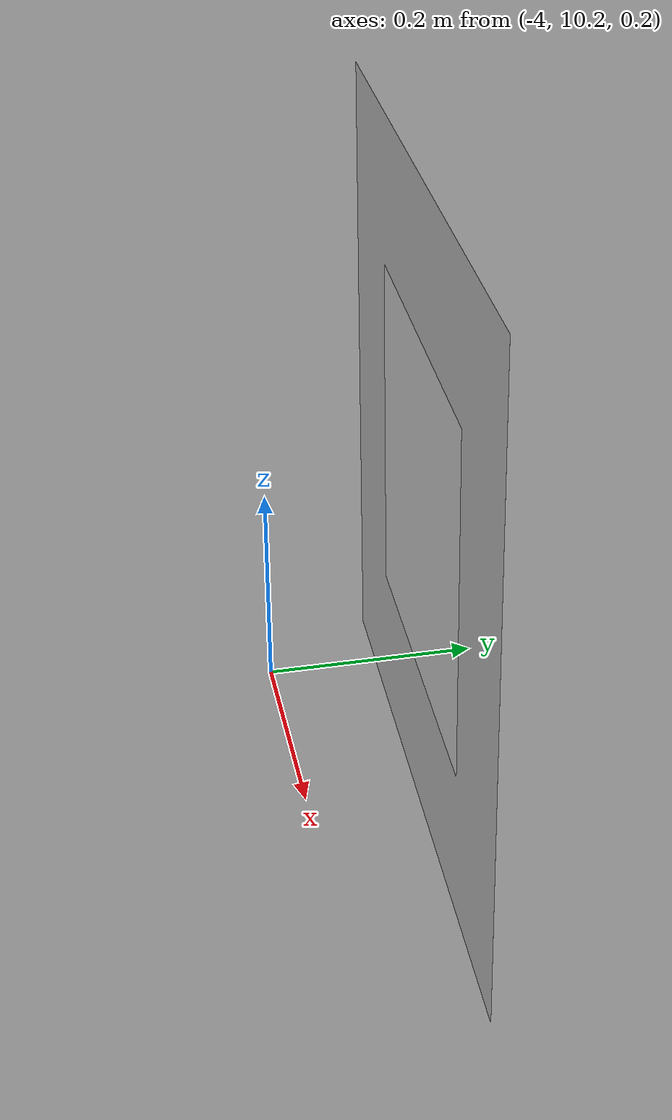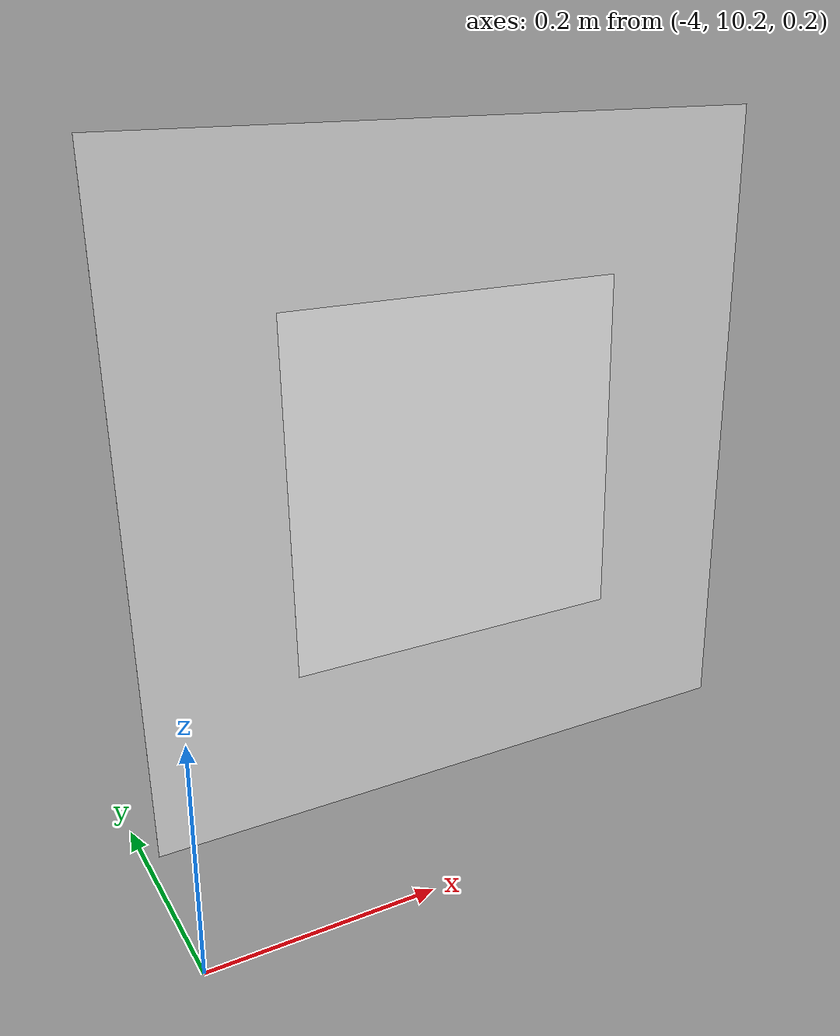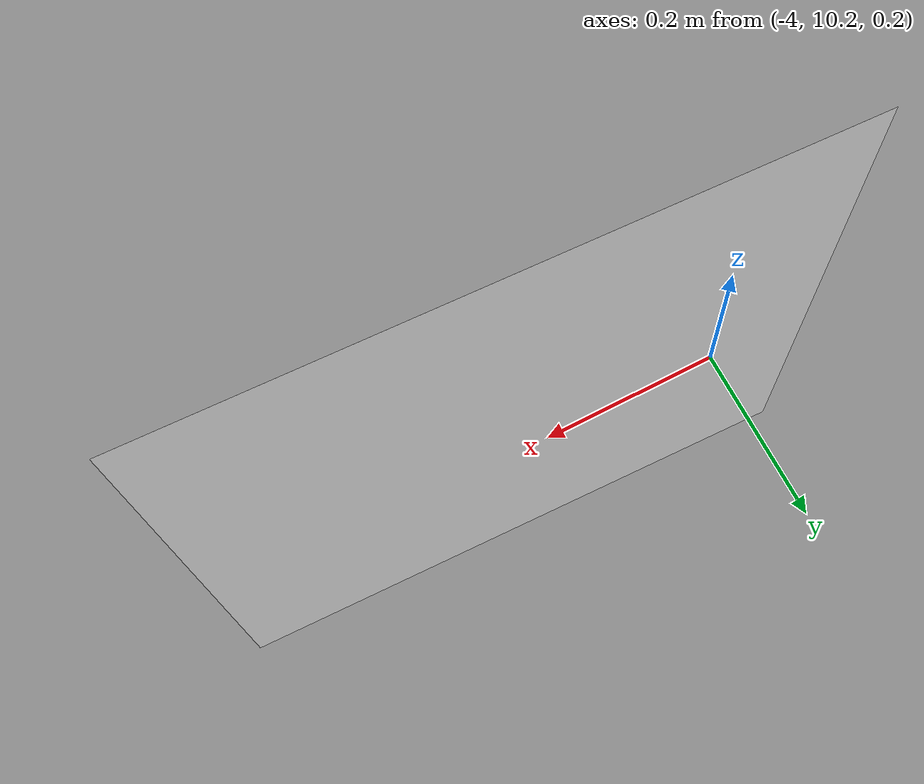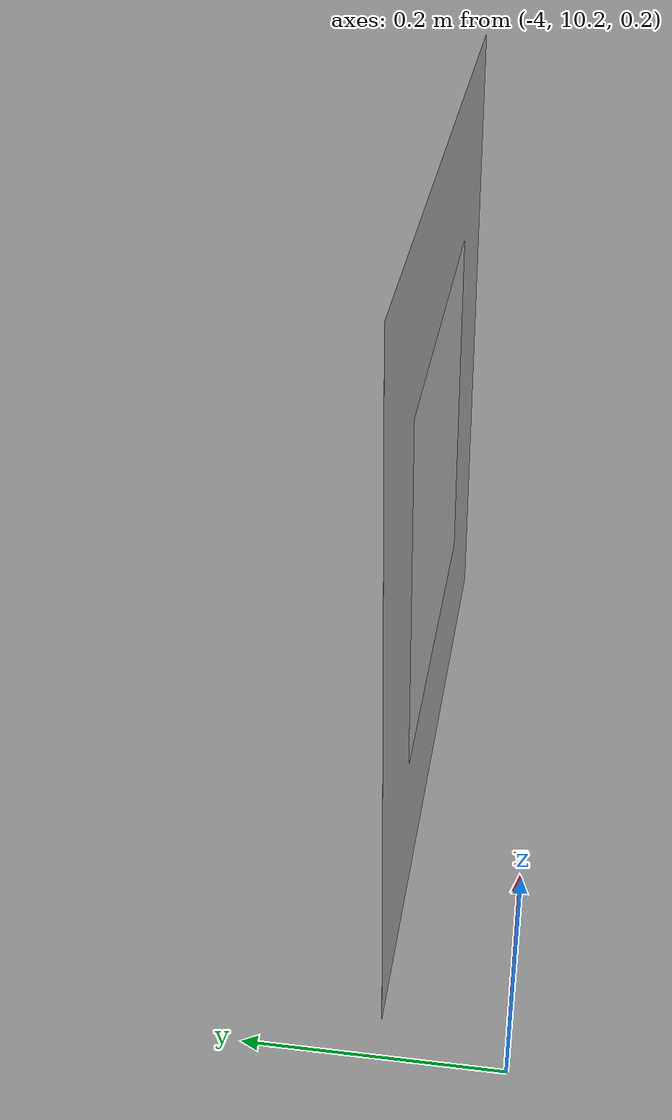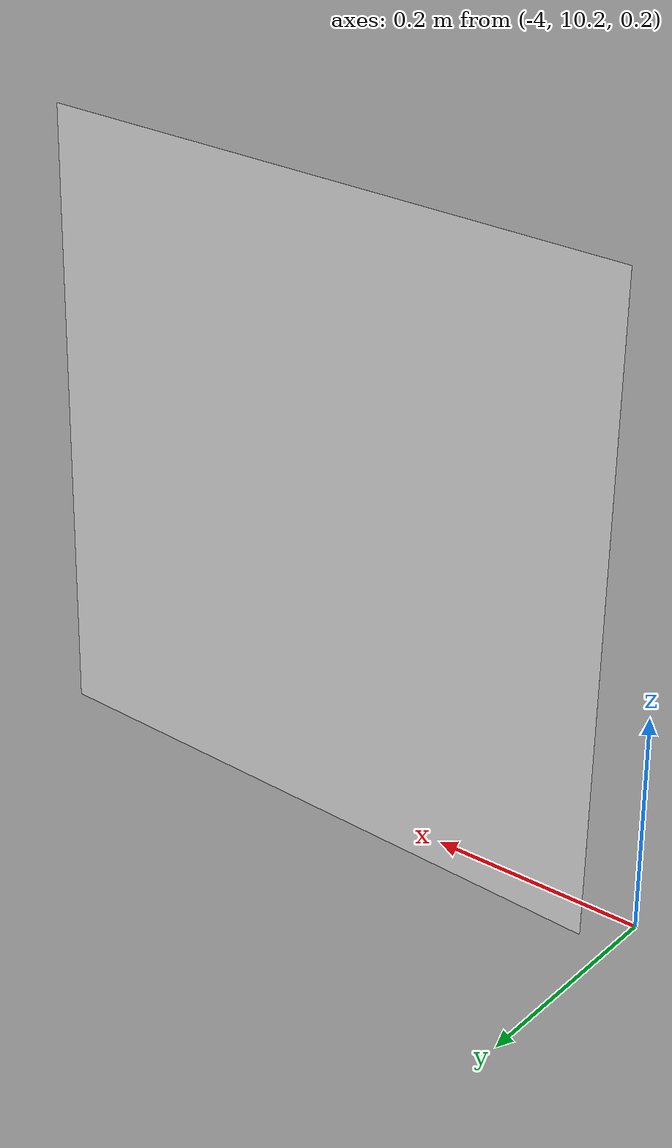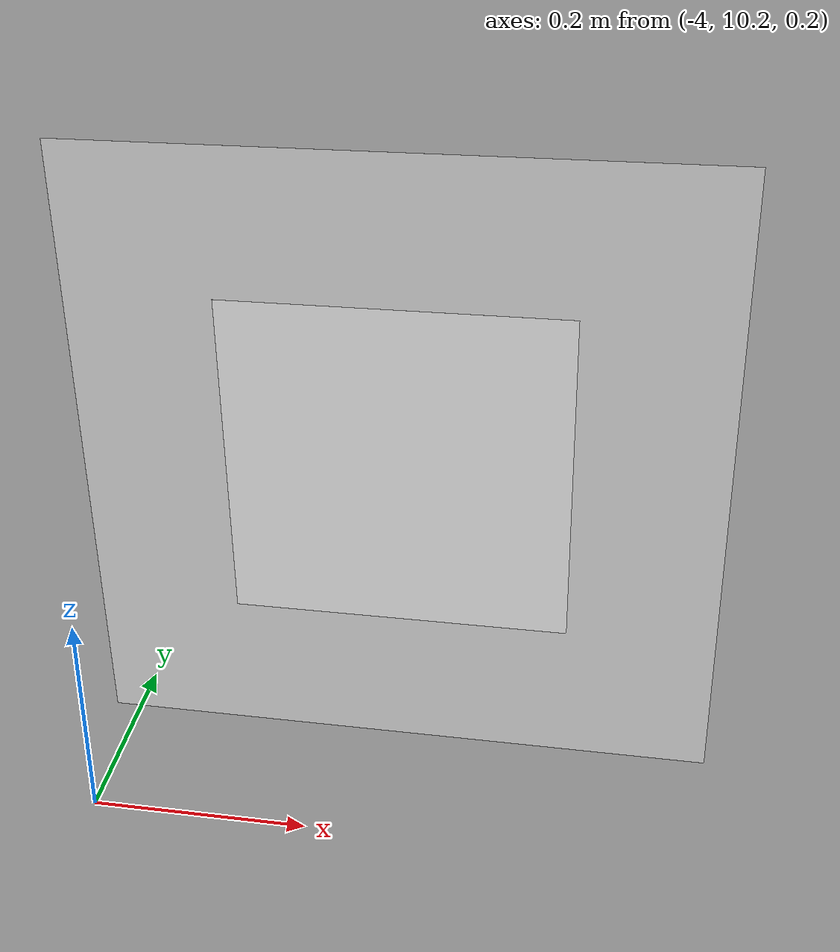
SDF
<sdf version="1.7">
 <world name="default">
  <model name="aruco_visual_marker_0_30cm_clone_6">
   <link name="marker">
    <inertial>
     <mass>1</mass>
     <inertia><ixx>1</ixx><ixy>0</ixy><ixz>0</ixz><iyy>1</iyy><iyz>0</iyz><izz>1</izz></inertia>
    </inertial>
    <visual name="visual">
     <geometry><box><size>0.3 0.3 3.1e-05</size></box></geometry>
     <material>
      <script>
       <uri>model://aruco_visual_marker_0/materials/scripts</uri>
       <uri>model://aruco_visual_marker_0/materials/textures</uri>
       <name>ArucoVisualMarker0/Marker</name>
      </script>
      <ambient>1 1 1 1</ambient>
      <diffuse>1 1 1 1</diffuse>
      <specular>0 0 0 1</specular>
      <emissive>1 1 1 0</emissive>
      <shader type="vertex"><normal_map>__default__</normal_map></shader>
     </material>
    </visual>
    <collision name="collision">
     <geometry><box><size>0.3 0.3 3.1e-05</size></box></geometry>
     <surface>
      <friction>
       <ode><mu>1</mu><mu2>1</mu2><fdir1>0 0 0</fdir1><slip1>0</slip1><slip2>0</slip2></ode>
       <torsional>
        <coefficient>1</coefficient>
        <patch_radius>0</patch_radius>
        <surface_radius>0</surface_radius>
        <use_patch_radius>1</use_patch_radius>
        <ode><slip>0</slip></ode>
       </torsional>
      </friction>
      <bounce><restitution_coefficient>0</restitution_coefficient><threshold>1e+06</threshold></bounce>
      <contact>
       <collide_without_contact>0</collide_without_contact>
       <collide_without_contact_bitmask>1</collide_without_contact_bitmask>
       <collide_bitmask>1</collide_bitmask>
       <ode>
        <soft_cfm>0</soft_cfm>
        <soft_erp>0.2</soft_erp>
        <kp>1e+13</kp>
        <kd>1</kd>
        <max_vel>0.01</max_vel>
        <min_depth>0</min_depth>
       </ode>
       <bullet>
        <split_impulse>1</split_impulse>
        <split_impulse_penetration_threshold>-0.01</split_impulse_penetration_threshold>
        <soft_cfm>0</soft_cfm>
        <soft_erp>0.2</soft_erp>
        <kp>1e+13</kp>
        <kd>1</kd>
       </bullet>
      </contact>
     </surface>
    </collision>
   </link>
   <link name="marker_pad">
    <pose>0 0 -1e-05 0 -0 0</pose>
    <visual name="visual">
     <geometry><box><size>0.559545 0.559545 3.1e-05</size></box></geometry>
     <material>
      <lighting>1</lighting>
      <script><uri>file://media/materials/scripts/gazebo.material</uri><name>Gazebo/White</name></script>
      <ambient>0.3 0.3 0.3 1</ambient>
      <diffuse>0.7 0.7 0.7 1</diffuse>
      <specular>0.01 0.01 0.01 1</specular>
      <emissive>1 1 1 0</emissive>
      <shader type="vertex"><normal_map>__default__</normal_map></shader>
     </material>
    </visual>
    <collision name="collision">
     <geometry><box><size>0.559545 0.559545 3.1e-05</size></box></geometry>
     <surface>
      <friction>
       <ode><mu>1</mu><mu2>1</mu2><fdir1>0 0 0</fdir1><slip1>0</slip1><slip2>0</slip2></ode>
       <torsional>
        <coefficient>1</coefficient>
        <patch_radius>0</patch_radius>
        <surface_radius>0</surface_radius>
        <use_patch_radius>1</use_patch_radius>
        <ode><slip>0</slip></ode>
       </torsional>
      </friction>
      <bounce><restitution_coefficient>0</restitution_coefficient><threshold>1e+06</threshold></bounce>
      <contact>
       <collide_without_contact>0</collide_without_contact>
       <collide_without_contact_bitmask>1</collide_without_contact_bitmask>
       <collide_bitmask>1</collide_bitmask>
       <ode>
        <soft_cfm>0</soft_cfm>
        <soft_erp>0.2</soft_erp>
        <kp>1e+13</kp>
        <kd>1</kd>
        <max_vel>0.01</max_vel>
        <min_depth>0</min_depth>
       </ode>
       <bullet>
        <split_impulse>1</split_impulse>
        <split_impulse_penetration_threshold>-0.01</split_impulse_penetration_threshold>
        <soft_cfm>0</soft_cfm>
        <soft_erp>0.2</soft_erp>
        <kp>1e+13</kp>
        <kd>1</kd>
       </bullet>
      </contact>
     </surface>
    </collision>
   </link>
   <joint name="marker_JOINT_marker_pad" type="revolute">
    <parent>marker</parent>
    <child>marker_pad</child>
    <axis>
     <xyz>0 0 1</xyz>
     <limit><lower>0</lower><upper>0</upper><effort>-1</effort><velocity>-1</velocity></limit>
     <dynamics>
      <spring_reference>0</spring_reference>
      <spring_stiffness>0</spring_stiffness>
      <damping>0</damping>
      <friction>0</friction>
     </dynamics>
    </axis>
    <physics>
     <ode><limit><cfm>0</cfm><erp>0.2</erp></limit><suspension><cfm>0</cfm><erp>0.2</erp></suspension></ode>
    </physics>
   </joint>
   <static>1</static>
   <pose>-3.72914 10.2858 0.531548 -1.596 -1.55097 3.14159</pose>
  </model>
 </world>
</sdf>
